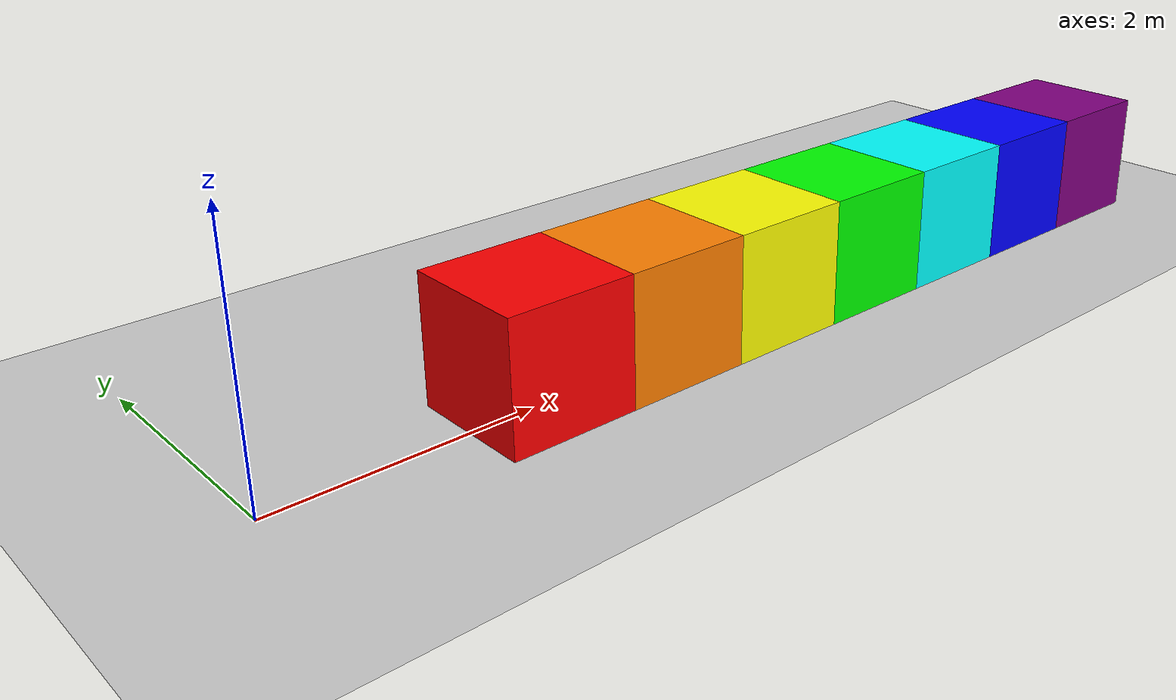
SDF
<?xml version="1.0"?>
<sdf version="1.10">
    <world name="car_world">
        <plugin
            filename="gz-sim-sensors-system"
            name="gz::sim::systems::Sensors">
            <render_engine>ogre2</render_engine>
        </plugin>
        <physics name="1ms" type="ignored">
            <max_step_size>0.001</max_step_size>
            <real_time_factor>1.0</real_time_factor>
        </physics>
        <plugin
            filename="gz-sim-physics-system"
            name="gz::sim::systems::Physics">
        </plugin>
        <plugin
            filename="gz-sim-user-commands-system"
            name="gz::sim::systems::UserCommands">
        </plugin>
        <plugin
            filename="gz-sim-scene-broadcaster-system"
            name="gz::sim::systems::SceneBroadcaster">
        </plugin>

        <light type="directional" name="sun">
            <cast_shadows>true</cast_shadows>
            <pose>0 0 10 0 0 0</pose>
            <diffuse>0.5 0.5 0.5 1</diffuse>
            <specular>0.2 0.2 0.2 1</specular>
            <attenuation>
                <range>1000</range>
                <constant>0.9</constant>
                <linear>0.01</linear>
                <quadratic>0.001</quadratic>
            </attenuation>
            <direction>-0.5 0.1 -0.9</direction>
        </light>

        <model name="ground_plane">
            <static>true</static>
            <link name="link">
                <collision name="collision">
                    <geometry>
                        <plane><normal>0 0 1</normal></plane>
                    </geometry>
                </collision>
                <visual name="visual">
                    <geometry>
                        <plane><normal>0 0 1</normal><size>100 100</size></plane>
                    </geometry>
                    <material>
                        <ambient>0.8 0.8 0.8 1</ambient>
                        <diffuse>0.8 0.8 0.8 1</diffuse>
                        <specular>0.8 0.8 0.8 1</specular>
                    </material>
                </visual>
            </link>
        </model>

        <!-- Cube 0: Red -->
        <model name="cube_0">
            <static>true</static>
            <pose>2.0 0 0.5 0 0 0</pose>
            <link name="link">
                <visual name="visual">
                    <geometry><box><size>1 1 1</size></box></geometry>
                    <material>
                        <ambient>1 0 0 1</ambient>
                        <diffuse>1 0 0 1</diffuse>
                        <specular>0.1 0.1 0.1 1</specular>
                    </material>
                </visual>
                <collision name="collision">
                    <geometry><box><size>1 1 1</size></box></geometry>
                </collision>
            </link>
        </model>

        <!-- Cube 1: Orange -->
        <model name="cube_1">
            <static>true</static>
            <pose>3.0 0 0.5 0 0 0</pose>
            <link name="link">
                <visual name="visual">
                    <geometry><box><size>1 1 1</size></box></geometry>
                    <material>
                        <ambient>1 0.5 0 1</ambient>
                        <diffuse>1 0.5 0 1</diffuse>
                        <specular>0.1 0.1 0.1 1</specular>
                    </material>
                </visual>
                <collision name="collision">
                    <geometry><box><size>1 1 1</size></box></geometry>
                </collision>
            </link>
        </model>

        <!-- Cube 2: Yellow -->
        <model name="cube_2">
            <static>true</static>
            <pose>4.0 0 0.5 0 0 0</pose>
            <link name="link">
                <visual name="visual">
                    <geometry><box><size>1 1 1</size></box></geometry>
                    <material>
                        <ambient>1 1 0 1</ambient>
                        <diffuse>1 1 0 1</diffuse>
                        <specular>0.1 0.1 0.1 1</specular>
                    </material>
                </visual>
                <collision name="collision">
                    <geometry><box><size>1 1 1</size></box></geometry>
                </collision>
            </link>
        </model>

        <!-- Cube 3: Green -->
        <model name="cube_3">
            <static>true</static>
            <pose>5.0 0 0.5 0 0 0</pose>
            <link name="link">
                <visual name="visual">
                    <geometry><box><size>1 1 1</size></box></geometry>
                    <material>
                        <ambient>0 1 0 1</ambient>
                        <diffuse>0 1 0 1</diffuse>
                        <specular>0.1 0.1 0.1 1</specular>
                    </material>
                </visual>
                <collision name="collision">
                    <geometry><box><size>1 1 1</size></box></geometry>
                </collision>
            </link>
        </model>

        <!-- Cube 4: Cyan -->
        <model name="cube_4">
            <static>true</static>
            <pose>6.0 0 0.5 0 0 0</pose>
            <link name="link">
                <visual name="visual">
                    <geometry><box><size>1 1 1</size></box></geometry>
                    <material>
                        <ambient>0 1 1 1</ambient>
                        <diffuse>0 1 1 1</diffuse>
                        <specular>0.1 0.1 0.1 1</specular>
                    </material>
                </visual>
                <collision name="collision">
                    <geometry><box><size>1 1 1</size></box></geometry>
                </collision>
            </link>
        </model>

        <!-- Cube 5: Blue -->
        <model name="cube_5">
            <static>true</static>
            <pose>7.0 0 0.5 0 0 0</pose>
            <link name="link">
                <visual name="visual">
                    <geometry><box><size>1 1 1</size></box></geometry>
                    <material>
                        <ambient>0 0 1 1</ambient>
                        <diffuse>0 0 1 1</diffuse>
                        <specular>0.1 0.1 0.1 1</specular>
                    </material>
                </visual>
                <collision name="collision">
                    <geometry><box><size>1 1 1</size></box></geometry>
                </collision>
            </link>
        </model>

        <!-- Cube 6: Purple -->
        <model name="cube_6">
            <static>true</static>
            <pose>8.0 0 0.5 0 0 0</pose>
            <link name="link">
                <visual name="visual">
                    <geometry><box><size>1 1 1</size></box></geometry>
                    <material>
                        <ambient>0.5 0 0.5 1</ambient>
                        <diffuse>0.5 0 0.5 1</diffuse>
                        <specular>0.1 0.1 0.1 1</specular>
                    </material>
                </visual>
                <collision name="collision">
                    <geometry><box><size>1 1 1</size></box></geometry>
                </collision>
            </link>
        </model>
    </world>
</sdf>
